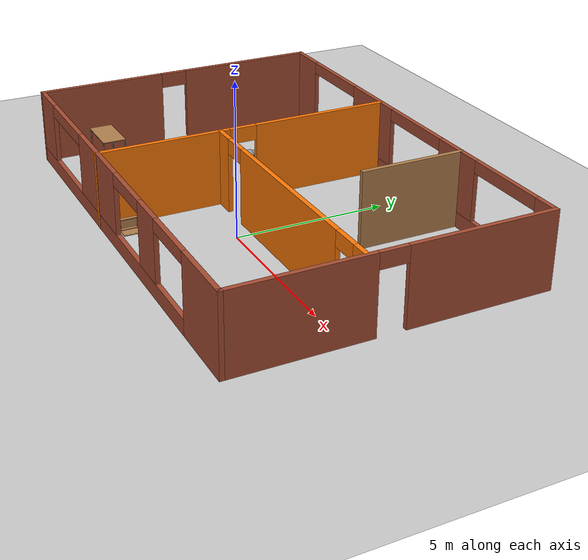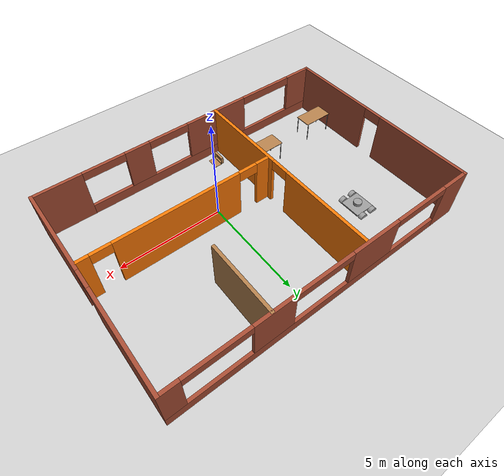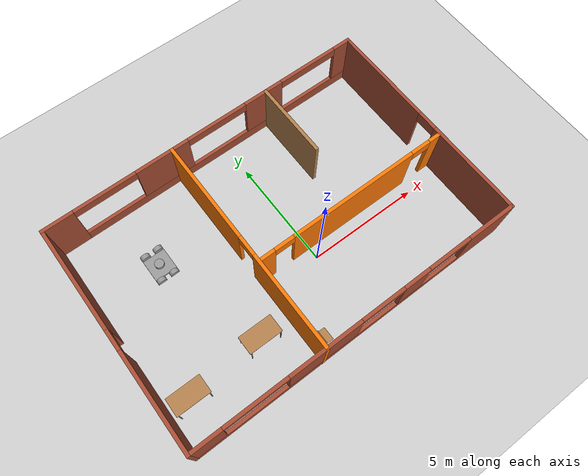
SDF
<sdf version="1.6">
 <world name="default">
  <model name="ground_plane">
   <static>1</static>
   <link name="link">
    <collision name="collision">
     <geometry><plane><normal>0 0 1</normal><size>100 100</size></plane></geometry>
     <surface><friction><ode><mu>100</mu><mu2>50</mu2></ode></friction></surface>
    </collision>
    <visual name="visual">
     <cast_shadows>0</cast_shadows>
     <geometry><plane><normal>0 0 1</normal><size>100 100</size></plane></geometry>
     <material>
      <script><uri>file://media/materials/scripts/gazebo.material</uri><name>Gazebo/Grey</name></script>
     </material>
    </visual>
   </link>
  </model>
  <model name="Apartment">
   <pose>-0.845812 1.49022 0 0 -0 0</pose>
   <link name="Wall_10">
    <pose>0 4.92997 0 0 -0 0</pose>
    <visual name="Wall_10_Visual_0">
     <pose>-6.79371 0 1.25 0 -0 0</pose>
     <geometry><box><size>1.41257 0.15 2.5</size></box></geometry>
     <material>
      <script><uri>file://media/materials/scripts/gazebo.material</uri><name>Gazebo/Bricks</name></script>
      <ambient>1 1 1 1</ambient>
     </material>
     <meta><layer>0</layer></meta>
    </visual>
    <collision name="Wall_10_Collision_0">
     <geometry><box><size>1.41257 0.15 2.5</size></box></geometry>
     <pose>-6.79371 0 1.25 0 -0 0</pose>
    </collision>
    <visual name="Wall_10_Visual_1">
     <pose>0.706287 0 0.25 0 -0 0</pose>
     <geometry><box><size>13.5874 0.15 0.5</size></box></geometry>
     <material>
      <script><uri>file://media/materials/scripts/gazebo.material</uri><name>Gazebo/Bricks</name></script>
      <ambient>1 1 1 1</ambient>
     </material>
     <meta><layer>0</layer></meta>
    </visual>
    <collision name="Wall_10_Collision_1">
     <geometry><box><size>13.5874 0.15 0.5</size></box></geometry>
     <pose>0.706287 0 0.25 0 -0 0</pose>
    </collision>
    <visual name="Wall_10_Visual_2">
     <pose>-2.06392 0 1.5 0 -0 0</pose>
     <geometry><box><size>2.44702 0.15 2</size></box></geometry>
     <material>
      <script><uri>file://media/materials/scripts/gazebo.material</uri><name>Gazebo/Bricks</name></script>
      <ambient>1 1 1 1</ambient>
     </material>
     <meta><layer>0</layer></meta>
    </visual>
    <collision name="Wall_10_Collision_2">
     <geometry><box><size>2.44702 0.15 2</size></box></geometry>
     <pose>-2.06392 0 1.5 0 -0 0</pose>
    </collision>
    <visual name="Wall_10_Visual_3">
     <pose>2.89414 0 1.5 0 -0 0</pose>
     <geometry><box><size>1.86909 0.15 2</size></box></geometry>
     <material>
      <script><uri>file://media/materials/scripts/gazebo.material</uri><name>Gazebo/Bricks</name></script>
      <ambient>1 1 1 1</ambient>
     </material>
     <meta><layer>0</layer></meta>
    </visual>
    <collision name="Wall_10_Collision_3">
     <geometry><box><size>1.86909 0.15 2</size></box></geometry>
     <pose>2.89414 0 1.5 0 -0 0</pose>
    </collision>
    <visual name="Wall_10_Visual_4">
     <pose>7.06434 0 1.5 0 -0 0</pose>
     <geometry><box><size>0.87132 0.15 2</size></box></geometry>
     <material>
      <script><uri>file://media/materials/scripts/gazebo.material</uri><name>Gazebo/Bricks</name></script>
      <ambient>1 1 1 1</ambient>
     </material>
     <meta><layer>0</layer></meta>
    </visual>
    <collision name="Wall_10_Collision_4">
     <geometry><box><size>0.87132 0.15 2</size></box></geometry>
     <pose>7.06434 0 1.5 0 -0 0</pose>
    </collision>
    <visual name="Wall_10_Visual_5">
     <pose>-4.68743 0 2.3 0 -0 0</pose>
     <geometry><box><size>2.8 0.15 0.4</size></box></geometry>
     <material>
      <script><uri>file://media/materials/scripts/gazebo.material</uri><name>Gazebo/Bricks</name></script>
      <ambient>1 1 1 1</ambient>
     </material>
     <meta><layer>0</layer></meta>
    </visual>
    <collision name="Wall_10_Collision_5">
     <geometry><box><size>2.8 0.15 0.4</size></box></geometry>
     <pose>-4.68743 0 2.3 0 -0 0</pose>
    </collision>
    <visual name="Wall_10_Visual_6">
     <pose>0.559594 0 2.3 0 -0 0</pose>
     <geometry><box><size>2.8 0.15 0.4</size></box></geometry>
     <material>
      <script><uri>file://media/materials/scripts/gazebo.material</uri><name>Gazebo/Bricks</name></script>
      <ambient>1 1 1 1</ambient>
     </material>
     <meta><layer>0</layer></meta>
    </visual>
    <collision name="Wall_10_Collision_6">
     <geometry><box><size>2.8 0.15 0.4</size></box></geometry>
     <pose>0.559594 0 2.3 0 -0 0</pose>
    </collision>
    <visual name="Wall_10_Visual_7">
     <pose>5.22868 0 2.3 0 -0 0</pose>
     <geometry><box><size>2.8 0.15 0.4</size></box></geometry>
     <material>
      <script><uri>file://media/materials/scripts/gazebo.material</uri><name>Gazebo/Bricks</name></script>
      <ambient>1 1 1 1</ambient>
     </material>
     <meta><layer>0</layer></meta>
    </visual>
    <collision name="Wall_10_Collision_7">
     <geometry><box><size>2.8 0.15 0.4</size></box></geometry>
     <pose>5.22868 0 2.3 0 -0 0</pose>
    </collision>
   </link>
   <link name="Wall_11">
    <pose>7.425 0.004969 0 0 0 -1.5708</pose>
    <visual name="Wall_11_Visual_0">
     <pose>-2.65027 0 1.25 0 -0 0</pose>
     <geometry><box><size>4.69945 0.15 2.5</size></box></geometry>
     <material>
      <script><uri>file://media/materials/scripts/gazebo.material</uri><name>Gazebo/Bricks</name></script>
      <ambient>1 1 1 1</ambient>
     </material>
     <meta><layer>0</layer></meta>
    </visual>
    <collision name="Wall_11_Collision_0">
     <geometry><box><size>4.69945 0.15 2.5</size></box></geometry>
     <pose>-2.65027 0 1.25 0 -0 0</pose>
    </collision>
    <visual name="Wall_11_Visual_1">
     <pose>2.79973 0 1.25 0 -0 0</pose>
     <geometry><box><size>4.40055 0.15 2.5</size></box></geometry>
     <material>
      <script><uri>file://media/materials/scripts/gazebo.material</uri><name>Gazebo/Bricks</name></script>
      <ambient>1 1 1 1</ambient>
     </material>
     <meta><layer>0</layer></meta>
    </visual>
    <collision name="Wall_11_Collision_1">
     <geometry><box><size>4.40055 0.15 2.5</size></box></geometry>
     <pose>2.79973 0 1.25 0 -0 0</pose>
    </collision>
    <visual name="Wall_11_Visual_2">
     <pose>0.149452 0 2.25 0 -0 0</pose>
     <geometry><box><size>0.9 0.15 0.5</size></box></geometry>
     <material>
      <script><uri>file://media/materials/scripts/gazebo.material</uri><name>Gazebo/Bricks</name></script>
      <ambient>1 1 1 1</ambient>
     </material>
     <meta><layer>0</layer></meta>
    </visual>
    <collision name="Wall_11_Collision_2">
     <geometry><box><size>0.9 0.15 0.5</size></box></geometry>
     <pose>0.149452 0 2.25 0 -0 0</pose>
    </collision>
   </link>
   <link name="Wall_12">
    <pose>0 -4.92003 0 0 -0 3.14159</pose>
    <visual name="Wall_12_Visual_0">
     <pose>-6.37006 0 1.25 0 -0 0</pose>
     <geometry><box><size>2.25989 0.15 2.5</size></box></geometry>
     <material>
      <script><uri>file://media/materials/scripts/gazebo.material</uri><name>Gazebo/Bricks</name></script>
      <ambient>1 1 1 1</ambient>
     </material>
     <meta><layer>0</layer></meta>
    </visual>
    <collision name="Wall_12_Collision_0">
     <geometry><box><size>2.25989 0.15 2.5</size></box></geometry>
     <pose>-6.37006 0 1.25 0 -0 0</pose>
    </collision>
    <visual name="Wall_12_Visual_1">
     <pose>1.12994 0 0.25 0 -0 0</pose>
     <geometry><box><size>12.7401 0.15 0.5</size></box></geometry>
     <material>
      <script><uri>file://media/materials/scripts/gazebo.material</uri><name>Gazebo/Bricks</name></script>
      <ambient>1 1 1 1</ambient>
     </material>
     <meta><layer>0</layer></meta>
    </visual>
    <collision name="Wall_12_Collision_1">
     <geometry><box><size>12.7401 0.15 0.5</size></box></geometry>
     <pose>1.12994 0 0.25 0 -0 0</pose>
    </collision>
    <visual name="Wall_12_Visual_2">
     <pose>-2.62798 0 1.5 0 -0 0</pose>
     <geometry><box><size>1.22426 0.15 2</size></box></geometry>
     <material>
      <script><uri>file://media/materials/scripts/gazebo.material</uri><name>Gazebo/Bricks</name></script>
      <ambient>1 1 1 1</ambient>
     </material>
     <meta><layer>0</layer></meta>
    </visual>
    <collision name="Wall_12_Collision_2">
     <geometry><box><size>1.22426 0.15 2</size></box></geometry>
     <pose>-2.62798 0 1.5 0 -0 0</pose>
    </collision>
    <visual name="Wall_12_Visual_3">
     <pose>1.62058 0 1.5 0 -0 0</pose>
     <geometry><box><size>3.27286 0.15 2</size></box></geometry>
     <material>
      <script><uri>file://media/materials/scripts/gazebo.material</uri><name>Gazebo/Bricks</name></script>
      <ambient>1 1 1 1</ambient>
     </material>
     <meta><layer>0</layer></meta>
    </visual>
    <collision name="Wall_12_Collision_3">
     <geometry><box><size>3.27286 0.15 2</size></box></geometry>
     <pose>1.62058 0 1.5 0 -0 0</pose>
    </collision>
    <visual name="Wall_12_Visual_4">
     <pose>6.7785 0 1.5 0 -0 0</pose>
     <geometry><box><size>1.44299 0.15 2</size></box></geometry>
     <material>
      <script><uri>file://media/materials/scripts/gazebo.material</uri><name>Gazebo/Bricks</name></script>
      <ambient>1 1 1 1</ambient>
     </material>
     <meta><layer>0</layer></meta>
    </visual>
    <collision name="Wall_12_Collision_4">
     <geometry><box><size>1.44299 0.15 2</size></box></geometry>
     <pose>6.7785 0 1.5 0 -0 0</pose>
    </collision>
    <visual name="Wall_12_Visual_5">
     <pose>-4.24011 0 2.3 0 -0 0</pose>
     <geometry><box><size>2 0.15 0.4</size></box></geometry>
     <material>
      <script><uri>file://media/materials/scripts/gazebo.material</uri><name>Gazebo/Bricks</name></script>
      <ambient>1 1 1 1</ambient>
     </material>
     <meta><layer>0</layer></meta>
    </visual>
    <collision name="Wall_12_Collision_5">
     <geometry><box><size>2 0.15 0.4</size></box></geometry>
     <pose>-4.24011 0 2.3 0 -0 0</pose>
    </collision>
    <visual name="Wall_12_Visual_6">
     <pose>-1.01586 0 2.3 0 -0 0</pose>
     <geometry><box><size>2 0.15 0.4</size></box></geometry>
     <material>
      <script><uri>file://media/materials/scripts/gazebo.material</uri><name>Gazebo/Bricks</name></script>
      <ambient>1 1 1 1</ambient>
     </material>
     <meta><layer>0</layer></meta>
    </visual>
    <collision name="Wall_12_Collision_6">
     <geometry><box><size>2 0.15 0.4</size></box></geometry>
     <pose>-1.01586 0 2.3 0 -0 0</pose>
    </collision>
    <visual name="Wall_12_Visual_7">
     <pose>4.65701 0 2.3 0 -0 0</pose>
     <geometry><box><size>2.8 0.15 0.4</size></box></geometry>
     <material>
      <script><uri>file://media/materials/scripts/gazebo.material</uri><name>Gazebo/Bricks</name></script>
      <ambient>1 1 1 1</ambient>
     </material>
     <meta><layer>0</layer></meta>
    </visual>
    <collision name="Wall_12_Collision_7">
     <geometry><box><size>2.8 0.15 0.4</size></box></geometry>
     <pose>4.65701 0 2.3 0 -0 0</pose>
    </collision>
   </link>
   <link name="Wall_14">
    <pose>-1.60005 -0.004969 0 0 0 -1.5708</pose>
    <visual name="Wall_14_Visual_0">
     <pose>-2.65524 0 1.25 0 -0 0</pose>
     <geometry><box><size>4.68951 0.15 2.5</size></box></geometry>
     <material>
      <script><uri>file://media/materials/scripts/gazebo.material</uri><name>Gazebo/Grey</name></script>
      <ambient>0.996078 0.47451 0.0196078 1</ambient>
     </material>
     <meta><layer>0</layer></meta>
    </visual>
    <collision name="Wall_14_Collision_0">
     <geometry><box><size>4.68951 0.15 2.5</size></box></geometry>
     <pose>-2.65524 0 1.25 0 -0 0</pose>
    </collision>
    <visual name="Wall_14_Visual_1">
     <pose>2.79476 0 1.25 0 -0 0</pose>
     <geometry><box><size>4.41049 0.15 2.5</size></box></geometry>
     <material>
      <script><uri>file://media/materials/scripts/gazebo.material</uri><name>Gazebo/Grey</name></script>
      <ambient>0.996078 0.47451 0.0196078 1</ambient>
     </material>
     <meta><layer>0</layer></meta>
    </visual>
    <collision name="Wall_14_Collision_1">
     <geometry><box><size>4.41049 0.15 2.5</size></box></geometry>
     <pose>2.79476 0 1.25 0 -0 0</pose>
    </collision>
    <visual name="Wall_14_Visual_2">
     <pose>0.139514 0 2.25 0 -0 0</pose>
     <geometry><box><size>0.9 0.15 0.5</size></box></geometry>
     <material>
      <script><uri>file://media/materials/scripts/gazebo.material</uri><name>Gazebo/Grey</name></script>
      <ambient>0.996078 0.47451 0.0196078 1</ambient>
     </material>
     <meta><layer>0</layer></meta>
    </visual>
    <collision name="Wall_14_Collision_2">
     <geometry><box><size>0.9 0.15 0.5</size></box></geometry>
     <pose>0.139514 0 2.25 0 -0 0</pose>
    </collision>
   </link>
   <link name="Wall_16">
    <pose>2.88579 -0.904921 0 0 -0 0</pose>
    <visual name="Wall_16_Visual_0">
     <pose>-4.13238 0 1.25 0 -0 0</pose>
     <geometry><box><size>0.735239 0.15 2.5</size></box></geometry>
     <material>
      <script><uri>file://media/materials/scripts/gazebo.material</uri><name>Gazebo/Grey</name></script>
      <ambient>0.996078 0.47451 0.0196078 1</ambient>
     </material>
     <meta><layer>0</layer></meta>
    </visual>
    <collision name="Wall_16_Collision_0">
     <geometry><box><size>0.735239 0.15 2.5</size></box></geometry>
     <pose>-4.13238 0 1.25 0 -0 0</pose>
    </collision>
    <visual name="Wall_16_Visual_1">
     <pose>0.084394 0 1.25 0 -0 0</pose>
     <geometry><box><size>5.89831 0.15 2.5</size></box></geometry>
     <material>
      <script><uri>file://media/materials/scripts/gazebo.material</uri><name>Gazebo/Grey</name></script>
      <ambient>0.996078 0.47451 0.0196078 1</ambient>
     </material>
     <meta><layer>0</layer></meta>
    </visual>
    <collision name="Wall_16_Collision_1">
     <geometry><box><size>5.89831 0.15 2.5</size></box></geometry>
     <pose>0.084394 0 1.25 0 -0 0</pose>
    </collision>
    <visual name="Wall_16_Visual_2">
     <pose>4.21678 0 1.25 0 -0 0</pose>
     <geometry><box><size>0.56645 0.15 2.5</size></box></geometry>
     <material>
      <script><uri>file://media/materials/scripts/gazebo.material</uri><name>Gazebo/Grey</name></script>
      <ambient>0.996078 0.47451 0.0196078 1</ambient>
     </material>
     <meta><layer>0</layer></meta>
    </visual>
    <collision name="Wall_16_Collision_2">
     <geometry><box><size>0.56645 0.15 2.5</size></box></geometry>
     <pose>4.21678 0 1.25 0 -0 0</pose>
    </collision>
    <visual name="Wall_16_Visual_3">
     <pose>-3.31476 0 2.25 0 -0 0</pose>
     <geometry><box><size>0.9 0.15 0.5</size></box></geometry>
     <material>
      <script><uri>file://media/materials/scripts/gazebo.material</uri><name>Gazebo/Grey</name></script>
      <ambient>0.996078 0.47451 0.0196078 1</ambient>
     </material>
     <meta><layer>0</layer></meta>
    </visual>
    <collision name="Wall_16_Collision_3">
     <geometry><box><size>0.9 0.15 0.5</size></box></geometry>
     <pose>-3.31476 0 2.25 0 -0 0</pose>
    </collision>
    <visual name="Wall_16_Visual_4">
     <pose>3.48355 0 2.25 0 -0 0</pose>
     <geometry><box><size>0.9 0.15 0.5</size></box></geometry>
     <material>
      <script><uri>file://media/materials/scripts/gazebo.material</uri><name>Gazebo/Grey</name></script>
      <ambient>0.996078 0.47451 0.0196078 1</ambient>
     </material>
     <meta><layer>0</layer></meta>
    </visual>
    <collision name="Wall_16_Collision_4">
     <geometry><box><size>0.9 0.15 0.5</size></box></geometry>
     <pose>3.48355 0 2.25 0 -0 0</pose>
    </collision>
   </link>
   <link name="Wall_18">
    <collision name="Wall_18_Collision">
     <geometry><box><size>3.5 0.15 2.5</size></box></geometry>
     <pose>0 0 1.25 0 -0 0</pose>
    </collision>
    <visual name="Wall_18_Visual">
     <pose>0 0 1.25 0 -0 0</pose>
     <geometry><box><size>3.5 0.15 2.5</size></box></geometry>
     <material>
      <script><uri>file://media/materials/scripts/gazebo.material</uri><name>Gazebo/Wood</name></script>
      <ambient>1 1 1 1</ambient>
     </material>
     <meta><layer>0</layer></meta>
    </visual>
    <pose>3.02341 3.22982 0 0 0 -1.5708</pose>
   </link>
   <link name="Wall_9">
    <pose>-7.425 0.004969 0 0 -0 1.5708</pose>
    <visual name="Wall_9_Visual_0">
     <pose>-2.82254 0 1.25 0 -0 0</pose>
     <geometry><box><size>4.35492 0.15 2.5</size></box></geometry>
     <material>
      <script><uri>file://media/materials/scripts/gazebo.material</uri><name>Gazebo/Bricks</name></script>
      <ambient>1 1 1 1</ambient>
     </material>
     <meta><layer>0</layer></meta>
    </visual>
    <collision name="Wall_9_Collision_0">
     <geometry><box><size>4.35492 0.15 2.5</size></box></geometry>
     <pose>-2.82254 0 1.25 0 -0 0</pose>
    </collision>
    <visual name="Wall_9_Visual_1">
     <pose>2.62746 0 1.25 0 -0 0</pose>
     <geometry><box><size>4.74508 0.15 2.5</size></box></geometry>
     <material>
      <script><uri>file://media/materials/scripts/gazebo.material</uri><name>Gazebo/Bricks</name></script>
      <ambient>1 1 1 1</ambient>
     </material>
     <meta><layer>0</layer></meta>
    </visual>
    <collision name="Wall_9_Collision_1">
     <geometry><box><size>4.74508 0.15 2.5</size></box></geometry>
     <pose>2.62746 0 1.25 0 -0 0</pose>
    </collision>
    <visual name="Wall_9_Visual_2">
     <pose>-0.195079 0 2.25 0 -0 0</pose>
     <geometry><box><size>0.9 0.15 0.5</size></box></geometry>
     <material>
      <script><uri>file://media/materials/scripts/gazebo.material</uri><name>Gazebo/Bricks</name></script>
      <ambient>1 1 1 1</ambient>
     </material>
     <meta><layer>0</layer></meta>
    </visual>
    <collision name="Wall_9_Collision_2">
     <geometry><box><size>0.9 0.15 0.5</size></box></geometry>
     <pose>-0.195079 0 2.25 0 -0 0</pose>
    </collision>
   </link>
   <static>1</static>
  </model>
  <model name="table">
   <static>1</static>
   <link name="link">
    <collision name="surface">
     <pose>0 0 1 0 -0 0</pose>
     <geometry><box><size>1.5 0.8 0.03</size></box></geometry>
     <surface><friction><ode><mu>0.6</mu><mu2>0.6</mu2></ode></friction></surface>
    </collision>
    <visual name="visual1">
     <pose>0 0 1 0 -0 0</pose>
     <geometry><box><size>1.5 0.8 0.03</size></box></geometry>
     <material>
      <script><uri>file://media/materials/scripts/gazebo.material</uri><name>Gazebo/Wood</name></script>
     </material>
    </visual>
    <collision name="front_left_leg">
     <pose>0.68 0.38 0.5 0 -0 0</pose>
     <geometry><cylinder><radius>0.02</radius><length>1</length></cylinder></geometry>
    </collision>
    <visual name="front_left_leg">
     <pose>0.68 0.38 0.5 0 -0 0</pose>
     <geometry><cylinder><radius>0.02</radius><length>1</length></cylinder></geometry>
     <material>
      <script><uri>file://media/materials/scripts/gazebo.material</uri><name>Gazebo/Grey</name></script>
     </material>
    </visual>
    <collision name="front_right_leg">
     <pose>0.68 -0.38 0.5 0 -0 0</pose>
     <geometry><cylinder><radius>0.02</radius><length>1</length></cylinder></geometry>
    </collision>
    <visual name="front_right_leg">
     <pose>0.68 -0.38 0.5 0 -0 0</pose>
     <geometry><cylinder><radius>0.02</radius><length>1</length></cylinder></geometry>
     <material>
      <script><uri>file://media/materials/scripts/gazebo.material</uri><name>Gazebo/Grey</name></script>
     </material>
    </visual>
    <collision name="back_right_leg">
     <pose>-0.68 -0.38 0.5 0 -0 0</pose>
     <geometry><cylinder><radius>0.02</radius><length>1</length></cylinder></geometry>
    </collision>
    <visual name="back_right_leg">
     <pose>-0.68 -0.38 0.5 0 -0 0</pose>
     <geometry><cylinder><radius>0.02</radius><length>1</length></cylinder></geometry>
     <material>
      <script><uri>file://media/materials/scripts/gazebo.material</uri><name>Gazebo/Grey</name></script>
     </material>
    </visual>
    <collision name="back_left_leg">
     <pose>-0.68 0.38 0.5 0 -0 0</pose>
     <geometry><cylinder><radius>0.02</radius><length>1</length></cylinder></geometry>
    </collision>
    <visual name="back_left_leg">
     <pose>-0.68 0.38 0.5 0 -0 0</pose>
     <geometry><cylinder><radius>0.02</radius><length>1</length></cylinder></geometry>
     <material>
      <script><uri>file://media/materials/scripts/gazebo.material</uri><name>Gazebo/Grey</name></script>
     </material>
    </visual>
   </link>
   <pose>-7.25657 -1.58373 0 0 -0 0</pose>
  </model>
  <model name="table_0">
   <static>1</static>
   <link name="link">
    <collision name="surface">
     <pose>0 0 1 0 -0 0</pose>
     <geometry><box><size>1.5 0.8 0.03</size></box></geometry>
     <surface><friction><ode><mu>0.6</mu><mu2>0.6</mu2></ode></friction></surface>
    </collision>
    <visual name="visual1">
     <pose>0 0 1 0 -0 0</pose>
     <geometry><box><size>1.5 0.8 0.03</size></box></geometry>
     <material>
      <script><uri>file://media/materials/scripts/gazebo.material</uri><name>Gazebo/Wood</name></script>
     </material>
    </visual>
    <collision name="front_left_leg">
     <pose>0.68 0.38 0.5 0 -0 0</pose>
     <geometry><cylinder><radius>0.02</radius><length>1</length></cylinder></geometry>
    </collision>
    <visual name="front_left_leg">
     <pose>0.68 0.38 0.5 0 -0 0</pose>
     <geometry><cylinder><radius>0.02</radius><length>1</length></cylinder></geometry>
     <material>
      <script><uri>file://media/materials/scripts/gazebo.material</uri><name>Gazebo/Grey</name></script>
     </material>
    </visual>
    <collision name="front_right_leg">
     <pose>0.68 -0.38 0.5 0 -0 0</pose>
     <geometry><cylinder><radius>0.02</radius><length>1</length></cylinder></geometry>
    </collision>
    <visual name="front_right_leg">
     <pose>0.68 -0.38 0.5 0 -0 0</pose>
     <geometry><cylinder><radius>0.02</radius><length>1</length></cylinder></geometry>
     <material>
      <script><uri>file://media/materials/scripts/gazebo.material</uri><name>Gazebo/Grey</name></script>
     </material>
    </visual>
    <collision name="back_right_leg">
     <pose>-0.68 -0.38 0.5 0 -0 0</pose>
     <geometry><cylinder><radius>0.02</radius><length>1</length></cylinder></geometry>
    </collision>
    <visual name="back_right_leg">
     <pose>-0.68 -0.38 0.5 0 -0 0</pose>
     <geometry><cylinder><radius>0.02</radius><length>1</length></cylinder></geometry>
     <material>
      <script><uri>file://media/materials/scripts/gazebo.material</uri><name>Gazebo/Grey</name></script>
     </material>
    </visual>
    <collision name="back_left_leg">
     <pose>-0.68 0.38 0.5 0 -0 0</pose>
     <geometry><cylinder><radius>0.02</radius><length>1</length></cylinder></geometry>
    </collision>
    <visual name="back_left_leg">
     <pose>-0.68 0.38 0.5 0 -0 0</pose>
     <geometry><cylinder><radius>0.02</radius><length>1</length></cylinder></geometry>
     <material>
      <script><uri>file://media/materials/scripts/gazebo.material</uri><name>Gazebo/Grey</name></script>
     </material>
    </visual>
   </link>
   <pose>-3.85106 -1.34557 0 0 -0 0</pose>
  </model>
  <model name="wooden_case_0">
   <link name="base">
    <pose>0 0 0.024 0 -0 0</pose>
    <inertial>
     <pose>-0.022184 0 0.171592 0 -0 0</pose>
     <mass>3.96264</mass>
     <inertia>
      <ixx>0.213536</ixx>
      <ixy>0</ixy>
      <ixz>0.000779377</ixz>
      <iyy>0.0708943</iyy>
      <iyz>0</iyz>
      <izz>0.154604</izz>
     </inertia>
    </inertial>
    <collision name="collision_back">
     <pose>-0.053975 0 0.1778 0 -0 0</pose>
     <geometry><box><size>0.01905 0.5461 0.3175</size></box></geometry>
     <surface>
      <contact>
       <poissons_ratio>0.347</poissons_ratio>
       <elastic_modulus>8.8e+09</elastic_modulus>
       <ode><kp>100000</kp><kd>100</kd><max_vel>100</max_vel><min_depth>0.001</min_depth></ode>
      </contact>
      <friction>
       <torsional>
        <coefficient>1</coefficient>
        <use_patch_radius>0</use_patch_radius>
        <surface_radius>0.01</surface_radius>
       </torsional>
      </friction>
     </surface>
    </collision>
    <visual name="visual_back">
     <pose>-0.053975 0 0.1778 0 -0 0</pose>
     <geometry><box><size>0.01905 0.5461 0.3175</size></box></geometry>
     <material>
      <script><uri>file://media/materials/scripts/gazebo.material</uri><name>Gazebo/Wood</name></script>
     </material>
    </visual>
    <collision name="collision_bottom">
     <pose>0 0 0.009525 0 -0 0</pose>
     <geometry><box><size>0.127 0.5842 0.01905</size></box></geometry>
     <surface>
      <contact>
       <poissons_ratio>0.347</poissons_ratio>
       <elastic_modulus>8.8e+09</elastic_modulus>
       <ode><kp>100000</kp><kd>100</kd><max_vel>100</max_vel><min_depth>0.001</min_depth></ode>
      </contact>
      <friction>
       <torsional>
        <coefficient>1</coefficient>
        <use_patch_radius>0</use_patch_radius>
        <surface_radius>0.01</surface_radius>
       </torsional>
      </friction>
     </surface>
    </collision>
    <visual name="visual_bottom">
     <pose>0 0 0.009525 0 -0 0</pose>
     <geometry><box><size>0.127 0.5842 0.01905</size></box></geometry>
     <material>
      <script><uri>file://media/materials/scripts/gazebo.material</uri><name>Gazebo/Wood</name></script>
     </material>
    </visual>
    <collision name="collision_top">
     <pose>0 0 0.346075 0 -0 0</pose>
     <geometry><box><size>0.127 0.5842 0.01905</size></box></geometry>
     <surface>
      <contact>
       <poissons_ratio>0.347</poissons_ratio>
       <elastic_modulus>8.8e+09</elastic_modulus>
       <ode><kp>100000</kp><kd>100</kd><max_vel>100</max_vel><min_depth>0.001</min_depth></ode>
      </contact>
      <friction>
       <torsional>
        <coefficient>1</coefficient>
        <use_patch_radius>0</use_patch_radius>
        <surface_radius>0.01</surface_radius>
       </torsional>
      </friction>
     </surface>
    </collision>
    <visual name="visual_top">
     <pose>0 0 0.346075 0 -0 0</pose>
     <geometry><box><size>0.127 0.5842 0.01905</size></box></geometry>
     <material>
      <script><uri>file://media/materials/scripts/gazebo.material</uri><name>Gazebo/Wood</name></script>
     </material>
    </visual>
    <collision name="collision_left">
     <pose>0 -0.282575 0.1778 0 -0 0</pose>
     <geometry><box><size>0.127 0.01905 0.3175</size></box></geometry>
     <surface>
      <contact>
       <poissons_ratio>0.347</poissons_ratio>
       <elastic_modulus>8.8e+09</elastic_modulus>
       <ode><kp>100000</kp><kd>100</kd><max_vel>100</max_vel><min_depth>0.001</min_depth></ode>
      </contact>
      <friction>
       <torsional>
        <coefficient>1</coefficient>
        <use_patch_radius>0</use_patch_radius>
        <surface_radius>0.01</surface_radius>
       </torsional>
      </friction>
     </surface>
    </collision>
    <visual name="visual_left">
     <pose>0 -0.282575 0.1778 0 -0 0</pose>
     <geometry><box><size>0.127 0.01905 0.3175</size></box></geometry>
     <material>
      <script><uri>file://media/materials/scripts/gazebo.material</uri><name>Gazebo/Wood</name></script>
     </material>
    </visual>
    <collision name="collision_right">
     <pose>0 0.282575 0.1778 0 -0 0</pose>
     <geometry><box><size>0.127 0.01905 0.3175</size></box></geometry>
     <surface>
      <contact>
       <poissons_ratio>0.347</poissons_ratio>
       <elastic_modulus>8.8e+09</elastic_modulus>
       <ode><kp>100000</kp><kd>100</kd><max_vel>100</max_vel><min_depth>0.001</min_depth></ode>
      </contact>
      <friction>
       <torsional>
        <coefficient>1</coefficient>
        <use_patch_radius>0</use_patch_radius>
        <surface_radius>0.01</surface_radius>
       </torsional>
      </friction>
     </surface>
    </collision>
    <visual name="visual_right">
     <pose>0 0.282575 0.1778 0 -0 0</pose>
     <geometry><box><size>0.127 0.01905 0.3175</size></box></geometry>
     <material>
      <script><uri>file://media/materials/scripts/gazebo.material</uri><name>Gazebo/Wood</name></script>
     </material>
    </visual>
    <collision name="collision_block_left">
     <pose>0.0095 -0.2151 -0.012 0 -0 0</pose>
     <geometry><box><size>0.108 0.05 0.024</size></box></geometry>
     <surface>
      <contact>
       <poissons_ratio>0.347</poissons_ratio>
       <elastic_modulus>8.8e+09</elastic_modulus>
       <ode><kp>100000</kp><kd>100</kd><max_vel>100</max_vel><min_depth>0.001</min_depth></ode>
      </contact>
      <friction>
       <torsional>
        <coefficient>1</coefficient>
        <use_patch_radius>0</use_patch_radius>
        <surface_radius>0.01</surface_radius>
       </torsional>
      </friction>
     </surface>
    </collision>
    <visual name="visual_block_left">
     <pose>0.0095 -0.2151 -0.012 0 -0 0</pose>
     <geometry><box><size>0.108 0.05 0.024</size></box></geometry>
     <material>
      <script><uri>file://media/materials/scripts/gazebo.material</uri><name>Gazebo/Wood</name></script>
     </material>
    </visual>
    <collision name="collision_block_right">
     <pose>0.0095 0.2151 -0.012 0 -0 0</pose>
     <geometry><box><size>0.108 0.05 0.024</size></box></geometry>
     <surface>
      <contact>
       <poissons_ratio>0.347</poissons_ratio>
       <elastic_modulus>8.8e+09</elastic_modulus>
       <ode><kp>100000</kp><kd>100</kd><max_vel>100</max_vel><min_depth>0.001</min_depth></ode>
      </contact>
      <friction>
       <torsional>
        <coefficient>1</coefficient>
        <use_patch_radius>0</use_patch_radius>
        <surface_radius>0.01</surface_radius>
       </torsional>
      </friction>
     </surface>
    </collision>
    <visual name="visual_block_right">
     <pose>0.0095 0.2151 -0.012 0 -0 0</pose>
     <geometry><box><size>0.108 0.05 0.024</size></box></geometry>
     <material>
      <script><uri>file://media/materials/scripts/gazebo.material</uri><name>Gazebo/Wood</name></script>
     </material>
    </visual>
   </link>
   <link name="lid">
    <pose>0.243775 0 0.009525 0 -0 0</pose>
    <inertial>
     <mass>1.97874</mass>
     <inertia>
      <ixx>0.0563367</ixx>
      <ixy>0</ixy>
      <ixz>0</ixz>
      <iyy>0.020911</iyy>
      <iyz>0</iyz>
      <izz>0.0771281</izz>
     </inertia>
    </inertial>
    <collision name="collision">
     <geometry><box><size>0.3556 0.5842 0.01905</size></box></geometry>
     <surface>
      <contact>
       <poissons_ratio>0.347</poissons_ratio>
       <elastic_modulus>8.8e+09</elastic_modulus>
       <ode><kp>100000</kp><kd>100</kd><max_vel>100</max_vel><min_depth>0.001</min_depth></ode>
      </contact>
      <friction>
       <torsional>
        <coefficient>1</coefficient>
        <use_patch_radius>0</use_patch_radius>
        <surface_radius>0.01</surface_radius>
       </torsional>
      </friction>
     </surface>
    </collision>
    <visual name="visual">
     <geometry><box><size>0.3556 0.5842 0.01905</size></box></geometry>
     <material>
      <script><uri>file://media/materials/scripts/gazebo.material</uri><name>Gazebo/Wood</name></script>
     </material>
    </visual>
    <visual name="tee_nut_1">
     <pose>0.122 -0.216 0 0 -0 0</pose>
     <geometry><cylinder><radius>0.00635</radius><length>0.0192405</length></cylinder></geometry>
     <material>
      <script><uri>file://media/materials/scripts/gazebo.material</uri><name>Gazebo/Grey</name></script>
     </material>
    </visual>
    <visual name="tee_nut_2">
     <pose>0.122 -0.088 0 0 -0 0</pose>
     <geometry><cylinder><radius>0.00635</radius><length>0.0192405</length></cylinder></geometry>
     <material>
      <script><uri>file://media/materials/scripts/gazebo.material</uri><name>Gazebo/Grey</name></script>
     </material>
    </visual>
    <visual name="tee_nut_3">
     <pose>0.122 0.088 0 0 -0 0</pose>
     <geometry><cylinder><radius>0.00635</radius><length>0.0192405</length></cylinder></geometry>
     <material>
      <script><uri>file://media/materials/scripts/gazebo.material</uri><name>Gazebo/Grey</name></script>
     </material>
    </visual>
    <visual name="tee_nut_4">
     <pose>0.122 0.216 0 0 -0 0</pose>
     <geometry><cylinder><radius>0.00635</radius><length>0.0192405</length></cylinder></geometry>
     <material>
      <script><uri>file://media/materials/scripts/gazebo.material</uri><name>Gazebo/Grey</name></script>
     </material>
    </visual>
   </link>
   <joint name="lid_hinge" type="revolute">
    <pose>-0.1778 0 0.01905 0 -0 0</pose>
    <parent>base</parent>
    <child>lid</child>
    <axis>
     <xyz>0 1 0</xyz>
     <limit><upper>0.523599</upper><lower>-1.5708</lower></limit>
     <use_parent_model_frame>0</use_parent_model_frame>
     <dynamics><spring_reference>0</spring_reference><spring_stiffness>0</spring_stiffness></dynamics>
    </axis>
   </joint>
   <pose>-1.99354 -2.72678 0 0 -0 0</pose>
  </model>
  <model name="Recon">
   <link name="link_0">
    <pose>0 -0.013386 -0.049161 0 -0 0</pose>
    <inertial>
     <mass>1</mass>
     <inertia>
      <ixx>0.166667</ixx>
      <ixy>0</ixy>
      <ixz>0</ixz>
      <iyy>0.166667</iyy>
      <iyz>0</iyz>
      <izz>0.166667</izz>
     </inertia>
    </inertial>
    <visual name="visual">
     <geometry><box><size>1 1 0.2</size></box></geometry>
     <material>
      <lighting>1</lighting>
      <script><uri>file://media/materials/scripts/gazebo.material</uri><name>Gazebo/Grey</name></script>
      <ambient>0.3 0.3 0.3 1</ambient>
      <diffuse>0.7 0.7 0.7 1</diffuse>
      <specular>0.01 0.01 0.01 1</specular>
      <emissive>0 0 0 1</emissive>
      <shader type="vertex"><normal_map>__default__</normal_map></shader>
     </material>
    </visual>
    <collision name="collision">
     <geometry><box><size>1 1 0.2</size></box></geometry>
     <surface>
      <friction>
       <ode><mu>1</mu><mu2>1</mu2><fdir1>0 0 0</fdir1><slip1>0</slip1><slip2>0</slip2></ode>
       <torsional>
        <coefficient>1</coefficient>
        <patch_radius>0</patch_radius>
        <surface_radius>0</surface_radius>
        <use_patch_radius>1</use_patch_radius>
        <ode><slip>0</slip></ode>
       </torsional>
      </friction>
      <bounce><restitution_coefficient>0</restitution_coefficient><threshold>1e+06</threshold></bounce>
      <contact>
       <collide_without_contact>0</collide_without_contact>
       <collide_without_contact_bitmask>1</collide_without_contact_bitmask>
       <collide_bitmask>1</collide_bitmask>
       <ode>
        <soft_cfm>0</soft_cfm>
        <soft_erp>0.2</soft_erp>
        <kp>1e+13</kp>
        <kd>1</kd>
        <max_vel>0.01</max_vel>
        <min_depth>0</min_depth>
       </ode>
       <bullet>
        <split_impulse>1</split_impulse>
        <split_impulse_penetration_threshold>-0.01</split_impulse_penetration_threshold>
        <soft_cfm>0</soft_cfm>
        <soft_erp>0.2</soft_erp>
        <kp>1e+13</kp>
        <kd>1</kd>
       </bullet>
      </contact>
     </surface>
    </collision>
   </link>
   <link name="link_1">
    <pose>-0.3 0.626773 -0.029177 1.57 -0 0</pose>
    <inertial>
     <mass>1</mass>
     <inertia><ixx>0.145833</ixx><ixy>0</ixy><ixz>0</ixz><iyy>0.145833</iyy><iyz>0</iyz><izz>0.125</izz></inertia>
    </inertial>
    <visual name="visual">
     <geometry><cylinder><radius>0.2</radius><length>0.2</length></cylinder></geometry>
     <material>
      <lighting>1</lighting>
      <script><uri>file://media/materials/scripts/gazebo.material</uri><name>Gazebo/Grey</name></script>
      <ambient>0.3 0.3 0.3 1</ambient>
      <diffuse>0.7 0.7 0.7 1</diffuse>
      <specular>0.01 0.01 0.01 1</specular>
      <emissive>0 0 0 1</emissive>
      <shader type="vertex"><normal_map>__default__</normal_map></shader>
     </material>
    </visual>
    <collision name="collision">
     <geometry><cylinder><radius>0.2</radius><length>0.2</length></cylinder></geometry>
     <surface>
      <friction>
       <ode><mu>1</mu><mu2>1</mu2><fdir1>0 0 0</fdir1><slip1>0</slip1><slip2>0</slip2></ode>
       <torsional>
        <coefficient>1</coefficient>
        <patch_radius>0</patch_radius>
        <surface_radius>0</surface_radius>
        <use_patch_radius>1</use_patch_radius>
        <ode><slip>0</slip></ode>
       </torsional>
      </friction>
      <bounce><restitution_coefficient>0</restitution_coefficient><threshold>1e+06</threshold></bounce>
      <contact>
       <collide_without_contact>0</collide_without_contact>
       <collide_without_contact_bitmask>1</collide_without_contact_bitmask>
       <collide_bitmask>1</collide_bitmask>
       <ode>
        <soft_cfm>0</soft_cfm>
        <soft_erp>0.2</soft_erp>
        <kp>1e+13</kp>
        <kd>1</kd>
        <max_vel>0.01</max_vel>
        <min_depth>0</min_depth>
       </ode>
       <bullet>
        <split_impulse>1</split_impulse>
        <split_impulse_penetration_threshold>-0.01</split_impulse_penetration_threshold>
        <soft_cfm>0</soft_cfm>
        <soft_erp>0.2</soft_erp>
        <kp>1e+13</kp>
        <kd>1</kd>
       </bullet>
      </contact>
     </surface>
    </collision>
   </link>
   <link name="link_2">
    <pose>0.3 0.626773 -0.029177 1.57 -0 0</pose>
    <inertial>
     <mass>1</mass>
     <inertia><ixx>0.145833</ixx><ixy>0</ixy><ixz>0</ixz><iyy>0.145833</iyy><iyz>0</iyz><izz>0.125</izz></inertia>
    </inertial>
    <visual name="visual">
     <geometry><cylinder><radius>0.2</radius><length>0.2</length></cylinder></geometry>
     <material>
      <lighting>1</lighting>
      <script><uri>file://media/materials/scripts/gazebo.material</uri><name>Gazebo/Grey</name></script>
      <ambient>0.3 0.3 0.3 1</ambient>
      <diffuse>0.7 0.7 0.7 1</diffuse>
      <specular>0.01 0.01 0.01 1</specular>
      <emissive>0 0 0 1</emissive>
      <shader type="vertex"><normal_map>__default__</normal_map></shader>
     </material>
    </visual>
    <collision name="collision">
     <geometry><cylinder><radius>0.2</radius><length>0.2</length></cylinder></geometry>
     <surface>
      <friction>
       <ode><mu>1</mu><mu2>1</mu2><fdir1>0 0 0</fdir1><slip1>0</slip1><slip2>0</slip2></ode>
       <torsional>
        <coefficient>1</coefficient>
        <patch_radius>0</patch_radius>
        <surface_radius>0</surface_radius>
        <use_patch_radius>1</use_patch_radius>
        <ode><slip>0</slip></ode>
       </torsional>
      </friction>
      <bounce><restitution_coefficient>0</restitution_coefficient><threshold>1e+06</threshold></bounce>
      <contact>
       <collide_without_contact>0</collide_without_contact>
       <collide_without_contact_bitmask>1</collide_without_contact_bitmask>
       <collide_bitmask>1</collide_bitmask>
       <ode>
        <soft_cfm>0</soft_cfm>
        <soft_erp>0.2</soft_erp>
        <kp>1e+13</kp>
        <kd>1</kd>
        <max_vel>0.01</max_vel>
        <min_depth>0</min_depth>
       </ode>
       <bullet>
        <split_impulse>1</split_impulse>
        <split_impulse_penetration_threshold>-0.01</split_impulse_penetration_threshold>
        <soft_cfm>0</soft_cfm>
        <soft_erp>0.2</soft_erp>
        <kp>1e+13</kp>
        <kd>1</kd>
       </bullet>
      </contact>
     </surface>
    </collision>
   </link>
   <link name="link_3">
    <pose>-0.3 -0.613387 -0.029161 1.5708 -0 0</pose>
    <inertial>
     <mass>1</mass>
     <inertia><ixx>0.145833</ixx><ixy>0</ixy><ixz>0</ixz><iyy>0.145833</iyy><iyz>0</iyz><izz>0.125</izz></inertia>
     <pose>-0.02 0 0 0 -0 0</pose>
    </inertial>
    <visual name="visual">
     <geometry><cylinder><radius>0.2</radius><length>0.2</length></cylinder></geometry>
     <material>
      <lighting>1</lighting>
      <script><uri>file://media/materials/scripts/gazebo.material</uri><name>Gazebo/Grey</name></script>
      <ambient>0.3 0.3 0.3 1</ambient>
      <diffuse>0.7 0.7 0.7 1</diffuse>
      <specular>0.01 0.01 0.01 1</specular>
      <emissive>0 0 0 1</emissive>
      <shader type="vertex"><normal_map>__default__</normal_map></shader>
     </material>
    </visual>
    <collision name="collision">
     <geometry><cylinder><radius>0.2</radius><length>0.2</length></cylinder></geometry>
     <surface>
      <friction>
       <ode><mu>1</mu><mu2>1</mu2><fdir1>0 0 0</fdir1><slip1>0</slip1><slip2>0</slip2></ode>
       <torsional>
        <coefficient>1</coefficient>
        <patch_radius>0</patch_radius>
        <surface_radius>0</surface_radius>
        <use_patch_radius>1</use_patch_radius>
        <ode><slip>0</slip></ode>
       </torsional>
      </friction>
      <bounce><restitution_coefficient>0</restitution_coefficient><threshold>1e+06</threshold></bounce>
      <contact>
       <collide_without_contact>0</collide_without_contact>
       <collide_without_contact_bitmask>1</collide_without_contact_bitmask>
       <collide_bitmask>1</collide_bitmask>
       <ode>
        <soft_cfm>0</soft_cfm>
        <soft_erp>0.2</soft_erp>
        <kp>1e+13</kp>
        <kd>1</kd>
        <max_vel>0.01</max_vel>
        <min_depth>0</min_depth>
       </ode>
       <bullet>
        <split_impulse>1</split_impulse>
        <split_impulse_penetration_threshold>-0.01</split_impulse_penetration_threshold>
        <soft_cfm>0</soft_cfm>
        <soft_erp>0.2</soft_erp>
        <kp>1e+13</kp>
        <kd>1</kd>
       </bullet>
      </contact>
     </surface>
    </collision>
   </link>
   <link name="link_4">
    <pose>0.3 -0.613387 -0.029161 1.5708 -0 0</pose>
    <inertial>
     <mass>1</mass>
     <inertia><ixx>0.145833</ixx><ixy>0</ixy><ixz>0</ixz><iyy>0.145833</iyy><iyz>0</iyz><izz>0.125</izz></inertia>
    </inertial>
    <visual name="visual">
     <geometry><cylinder><radius>0.2</radius><length>0.2</length></cylinder></geometry>
     <material>
      <lighting>1</lighting>
      <script><uri>file://media/materials/scripts/gazebo.material</uri><name>Gazebo/Grey</name></script>
      <ambient>0.3 0.3 0.3 1</ambient>
      <diffuse>0.7 0.7 0.7 1</diffuse>
      <specular>0.01 0.01 0.01 1</specular>
      <emissive>0 0 0 1</emissive>
      <shader type="vertex"><normal_map>__default__</normal_map></shader>
     </material>
    </visual>
    <collision name="collision">
     <geometry><cylinder><radius>0.2</radius><length>0.2</length></cylinder></geometry>
     <surface>
      <friction>
       <ode><mu>1</mu><mu2>1</mu2><fdir1>0 0 0</fdir1><slip1>0</slip1><slip2>0</slip2></ode>
       <torsional>
        <coefficient>1</coefficient>
        <patch_radius>0</patch_radius>
        <surface_radius>0</surface_radius>
        <use_patch_radius>1</use_patch_radius>
        <ode><slip>0</slip></ode>
       </torsional>
      </friction>
      <bounce><restitution_coefficient>0</restitution_coefficient><threshold>1e+06</threshold></bounce>
      <contact>
       <collide_without_contact>0</collide_without_contact>
       <collide_without_contact_bitmask>1</collide_without_contact_bitmask>
       <collide_bitmask>1</collide_bitmask>
       <ode>
        <soft_cfm>0</soft_cfm>
        <soft_erp>0.2</soft_erp>
        <kp>1e+13</kp>
        <kd>1</kd>
        <max_vel>0.01</max_vel>
        <min_depth>0</min_depth>
       </ode>
       <bullet>
        <split_impulse>1</split_impulse>
        <split_impulse_penetration_threshold>-0.01</split_impulse_penetration_threshold>
        <soft_cfm>0</soft_cfm>
        <soft_erp>0.2</soft_erp>
        <kp>1e+13</kp>
        <kd>1</kd>
       </bullet>
      </contact>
     </surface>
    </collision>
   </link>
   <link name="link_5">
    <pose>0 -0.013386 0.165839 0 -0 0</pose>
    <inertial>
     <mass>1</mass>
     <inertia><ixx>0.145833</ixx><ixy>0</ixy><ixz>0</ixz><iyy>0.145833</iyy><iyz>0</iyz><izz>0.125</izz></inertia>
    </inertial>
    <visual name="visual">
     <geometry><cylinder><radius>0.2</radius><length>0.15</length></cylinder></geometry>
     <material>
      <lighting>1</lighting>
      <script><uri>file://media/materials/scripts/gazebo.material</uri><name>Gazebo/Grey</name></script>
      <ambient>0.3 0.3 0.3 1</ambient>
      <diffuse>0.7 0.7 0.7 1</diffuse>
      <specular>0.01 0.01 0.01 1</specular>
      <emissive>0 0 0 1</emissive>
      <shader type="vertex"><normal_map>__default__</normal_map></shader>
     </material>
    </visual>
    <collision name="collision">
     <geometry><cylinder><radius>0.2</radius><length>0.15</length></cylinder></geometry>
     <surface>
      <friction>
       <ode><mu>1</mu><mu2>1</mu2><fdir1>0 0 0</fdir1><slip1>0</slip1><slip2>0</slip2></ode>
       <torsional>
        <coefficient>1</coefficient>
        <patch_radius>0</patch_radius>
        <surface_radius>0</surface_radius>
        <use_patch_radius>1</use_patch_radius>
        <ode><slip>0</slip></ode>
       </torsional>
      </friction>
      <bounce><restitution_coefficient>0</restitution_coefficient><threshold>1e+06</threshold></bounce>
      <contact>
       <collide_without_contact>0</collide_without_contact>
       <collide_without_contact_bitmask>1</collide_without_contact_bitmask>
       <collide_bitmask>1</collide_bitmask>
       <ode>
        <soft_cfm>0</soft_cfm>
        <soft_erp>0.2</soft_erp>
        <kp>1e+13</kp>
        <kd>1</kd>
        <max_vel>0.01</max_vel>
        <min_depth>0</min_depth>
       </ode>
       <bullet>
        <split_impulse>1</split_impulse>
        <split_impulse_penetration_threshold>-0.01</split_impulse_penetration_threshold>
        <soft_cfm>0</soft_cfm>
        <soft_erp>0.2</soft_erp>
        <kp>1e+13</kp>
        <kd>1</kd>
       </bullet>
      </contact>
     </surface>
    </collision>
   </link>
   <joint name="link_0_JOINT_2" type="revolute">
    <parent>link_0</parent>
    <child>link_4</child>
    <axis>
     <xyz>1 0 0</xyz>
     <use_parent_model_frame>0</use_parent_model_frame>
     <limit>
      <lower>-1.79769e+308</lower>
      <upper>1.79769e+308</upper>
      <effort>-1</effort>
      <velocity>-1</velocity>
     </limit>
     <dynamics>
      <spring_reference>0</spring_reference>
      <spring_stiffness>0</spring_stiffness>
      <damping>0</damping>
     </dynamics>
    </axis>
    <physics>
     <ode><limit><cfm>0</cfm><erp>0.2</erp></limit><suspension><cfm>0</cfm><erp>0.2</erp></suspension></ode>
    </physics>
   </joint>
   <joint name="link_0_JOINT_3" type="revolute">
    <parent>link_0</parent>
    <child>link_3</child>
    <axis>
     <xyz>1 0 0</xyz>
     <use_parent_model_frame>0</use_parent_model_frame>
     <limit>
      <lower>-1.79769e+308</lower>
      <upper>1.79769e+308</upper>
      <effort>-1</effort>
      <velocity>-1</velocity>
     </limit>
     <dynamics>
      <spring_reference>0</spring_reference>
      <spring_stiffness>0</spring_stiffness>
      <damping>0</damping>
     </dynamics>
    </axis>
    <physics>
     <ode><limit><cfm>0</cfm><erp>0.2</erp></limit><suspension><cfm>0</cfm><erp>0.2</erp></suspension></ode>
    </physics>
   </joint>
   <joint name="link_0_JOINT_4" type="revolute">
    <parent>link_0</parent>
    <child>link_1</child>
    <axis>
     <xyz>1 0 0</xyz>
     <use_parent_model_frame>0</use_parent_model_frame>
     <limit>
      <lower>-1.79769e+308</lower>
      <upper>1.79769e+308</upper>
      <effort>-1</effort>
      <velocity>-1</velocity>
     </limit>
     <dynamics>
      <spring_reference>0</spring_reference>
      <spring_stiffness>0</spring_stiffness>
      <damping>0</damping>
     </dynamics>
    </axis>
    <physics>
     <ode><limit><cfm>0</cfm><erp>0.2</erp></limit><suspension><cfm>0</cfm><erp>0.2</erp></suspension></ode>
    </physics>
   </joint>
   <joint name="link_0_JOINT_5" type="revolute">
    <parent>link_0</parent>
    <child>link_2</child>
    <axis>
     <xyz>1 0 0</xyz>
     <use_parent_model_frame>0</use_parent_model_frame>
     <limit>
      <lower>-1.79769e+308</lower>
      <upper>1.79769e+308</upper>
      <effort>-1</effort>
      <velocity>-1</velocity>
     </limit>
     <dynamics>
      <spring_reference>0</spring_reference>
      <spring_stiffness>0</spring_stiffness>
      <damping>0</damping>
     </dynamics>
    </axis>
    <physics>
     <ode><limit><cfm>0</cfm><erp>0.2</erp></limit><suspension><cfm>0</cfm><erp>0.2</erp></suspension></ode>
    </physics>
   </joint>
   <joint name="link_0_JOINT_6" type="revolute">
    <parent>link_0</parent>
    <child>link_5</child>
    <axis>
     <xyz>1 0 0</xyz>
     <use_parent_model_frame>0</use_parent_model_frame>
     <limit>
      <lower>-1.79769e+308</lower>
      <upper>1.79769e+308</upper>
      <effort>-1</effort>
      <velocity>-1</velocity>
     </limit>
     <dynamics>
      <spring_reference>0</spring_reference>
      <spring_stiffness>0</spring_stiffness>
      <damping>0</damping>
     </dynamics>
    </axis>
    <physics>
     <ode><limit><cfm>0</cfm><erp>0.2</erp></limit><suspension><cfm>0</cfm><erp>0.2</erp></suspension></ode>
    </physics>
   </joint>
   <static>0</static>
   <pose>-5.3276 3.63161 0 0 -0 0</pose>
  </model>
 </world>
</sdf>
